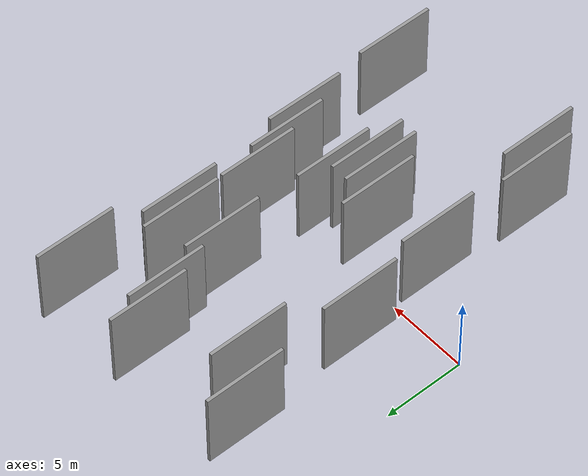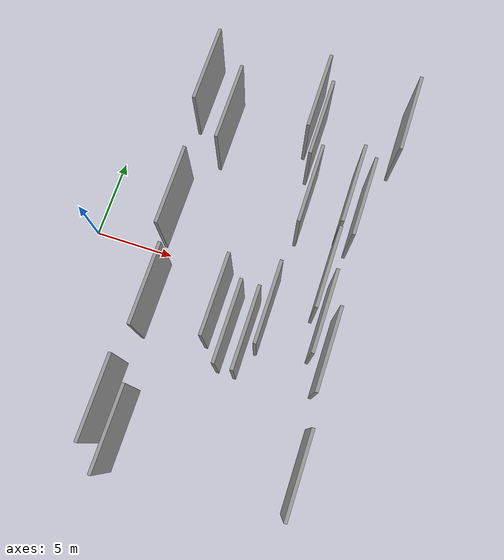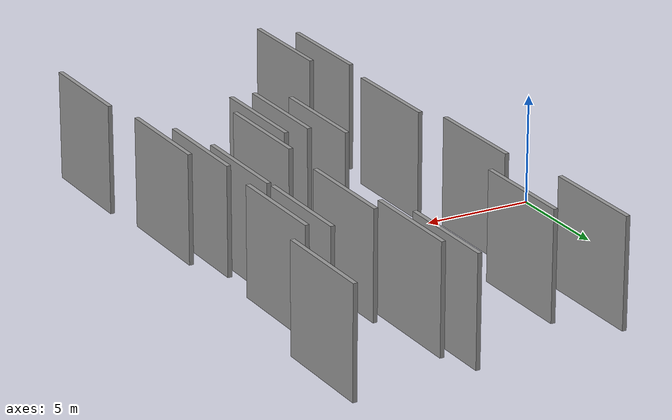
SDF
<sdf version="1.6">
 <world name="default">
  <scene>
   <sky><clouds><speed>12</speed></clouds></sky>
   <ambient>0.4 0.4 0.4 1</ambient>
   <background>0.7 0.7 0.7 1</background>
   <shadows>1</shadows>
  </scene>
  <gravity>0 0 -9.8066</gravity>
  <magnetic_field>6e-06 2.3e-05 -4.2e-05</magnetic_field>
  <physics default="0" name="default_physics" type="ode">
   <ode>
    <solver>
     <type>quick</type>
     <iters>10</iters>
     <sor>1.0</sor>
     <use_dynamic_moi_rescaling>0</use_dynamic_moi_rescaling>
    </solver>
    <constraints>
     <cfm>0</cfm>
     <erp>0.2</erp>
     <contact_max_correcting_vel>100</contact_max_correcting_vel>
     <contact_surface_layer>0.001</contact_surface_layer>
    </constraints>
   </ode>
   <max_step_size>0.004</max_step_size>
   <real_time_factor>1</real_time_factor>
   <real_time_update_rate>250</real_time_update_rate>
  </physics>
  <light name="sun" type="directional">
   <pose>0 0 10 0 0 0</pose>
   <diffuse>0.8 0.8 0.8 1</diffuse>
   <specular>0.2 0.2 0.2 1</specular>
   <attenuation>
    <range>1000</range>
    <constant>0.9</constant>
    <linear>0.01</linear>
    <quadratic>0.001</quadratic>
   </attenuation>
   <direction>-0.5 0.1 -0.9</direction>
  </light>
  <model name="grey_wall_1">
   <static>1</static>
   <pose>14.7380 1.0888 0.0 0.000000 0.000000 1.570796</pose>
   <link name="link">
    <pose>0 0 2.50 0 0 0</pose>
    <collision name="collision"><geometry><box><size>5.00 0.2 5.00</size></box></geometry></collision>
    <visual name="visual">
     <cast_shadows>0</cast_shadows>
     <geometry><box><size>5.00 0.2 5.00</size></box></geometry>
     <material>
      <script>
       <uri>model://grey_wall/materials/scripts</uri>
       <uri>model://grey_wall/materials/textures</uri>
       <name>vrc/grey_wall</name>
      </script>
     </material>
    </visual>
   </link>
  </model>
  <model name="grey_wall_2">
   <static>1</static>
   <pose>16.4564 -10.1881 0.0 0.000000 0.000000 1.570796</pose>
   <link name="link">
    <pose>0 0 2.50 0 0 0</pose>
    <collision name="collision"><geometry><box><size>5.00 0.2 5.00</size></box></geometry></collision>
    <visual name="visual">
     <cast_shadows>0</cast_shadows>
     <geometry><box><size>5.00 0.2 5.00</size></box></geometry>
     <material>
      <script>
       <uri>model://grey_wall/materials/scripts</uri>
       <uri>model://grey_wall/materials/textures</uri>
       <name>vrc/grey_wall</name>
      </script>
     </material>
    </visual>
   </link>
  </model>
  <model name="grey_wall_3">
   <static>1</static>
   <pose>16.0737 -3.3738 0.0 0.000000 0.000000 1.570796</pose>
   <link name="link">
    <pose>0 0 2.50 0 0 0</pose>
    <collision name="collision"><geometry><box><size>5.00 0.2 5.00</size></box></geometry></collision>
    <visual name="visual">
     <cast_shadows>0</cast_shadows>
     <geometry><box><size>5.00 0.2 5.00</size></box></geometry>
     <material>
      <script>
       <uri>model://grey_wall/materials/scripts</uri>
       <uri>model://grey_wall/materials/textures</uri>
       <name>vrc/grey_wall</name>
      </script>
     </material>
    </visual>
   </link>
  </model>
  <model name="grey_wall_4">
   <static>1</static>
   <pose>3.9370 11.1824 0.0 0.000000 0.000000 1.570796</pose>
   <link name="link">
    <pose>0 0 2.50 0 0 0</pose>
    <collision name="collision"><geometry><box><size>5.00 0.2 5.00</size></box></geometry></collision>
    <visual name="visual">
     <cast_shadows>0</cast_shadows>
     <geometry><box><size>5.00 0.2 5.00</size></box></geometry>
     <material>
      <script>
       <uri>model://grey_wall/materials/scripts</uri>
       <uri>model://grey_wall/materials/textures</uri>
       <name>vrc/grey_wall</name>
      </script>
     </material>
    </visual>
   </link>
  </model>
  <model name="grey_wall_5">
   <static>1</static>
   <pose>12.0923 -1.9052 0.0 0.000000 0.000000 1.570796</pose>
   <link name="link">
    <pose>0 0 2.50 0 0 0</pose>
    <collision name="collision"><geometry><box><size>5.00 0.2 5.00</size></box></geometry></collision>
    <visual name="visual">
     <cast_shadows>0</cast_shadows>
     <geometry><box><size>5.00 0.2 5.00</size></box></geometry>
     <material>
      <script>
       <uri>model://grey_wall/materials/scripts</uri>
       <uri>model://grey_wall/materials/textures</uri>
       <name>vrc/grey_wall</name>
      </script>
     </material>
    </visual>
   </link>
  </model>
  <model name="grey_wall_6">
   <static>1</static>
   <pose>11.3502 -3.6699 0.0 0.000000 0.000000 1.570796</pose>
   <link name="link">
    <pose>0 0 2.50 0 0 0</pose>
    <collision name="collision"><geometry><box><size>5.00 0.2 5.00</size></box></geometry></collision>
    <visual name="visual">
     <cast_shadows>0</cast_shadows>
     <geometry><box><size>5.00 0.2 5.00</size></box></geometry>
     <material>
      <script>
       <uri>model://grey_wall/materials/scripts</uri>
       <uri>model://grey_wall/materials/textures</uri>
       <name>vrc/grey_wall</name>
      </script>
     </material>
    </visual>
   </link>
  </model>
  <model name="grey_wall_7">
   <static>1</static>
   <pose>6.0468 -11.0918 0.0 0.000000 0.000000 1.570796</pose>
   <link name="link">
    <pose>0 0 2.50 0 0 0</pose>
    <collision name="collision"><geometry><box><size>5.00 0.2 5.00</size></box></geometry></collision>
    <visual name="visual">
     <cast_shadows>0</cast_shadows>
     <geometry><box><size>5.00 0.2 5.00</size></box></geometry>
     <material>
      <script>
       <uri>model://grey_wall/materials/scripts</uri>
       <uri>model://grey_wall/materials/textures</uri>
       <name>vrc/grey_wall</name>
      </script>
     </material>
    </visual>
   </link>
  </model>
  <model name="grey_wall_8">
   <static>1</static>
   <pose>5.1480 -3.0388 0.0 0.000000 0.000000 1.570796</pose>
   <link name="link">
    <pose>0 0 2.50 0 0 0</pose>
    <collision name="collision"><geometry><box><size>5.00 0.2 5.00</size></box></geometry></collision>
    <visual name="visual">
     <cast_shadows>0</cast_shadows>
     <geometry><box><size>5.00 0.2 5.00</size></box></geometry>
     <material>
      <script>
       <uri>model://grey_wall/materials/scripts</uri>
       <uri>model://grey_wall/materials/textures</uri>
       <name>vrc/grey_wall</name>
      </script>
     </material>
    </visual>
   </link>
  </model>
  <model name="grey_wall_9">
   <static>1</static>
   <pose>15.2754 -1.4124 0.0 0.000000 0.000000 1.570796</pose>
   <link name="link">
    <pose>0 0 2.50 0 0 0</pose>
    <collision name="collision"><geometry><box><size>5.00 0.2 5.00</size></box></geometry></collision>
    <visual name="visual">
     <cast_shadows>0</cast_shadows>
     <geometry><box><size>5.00 0.2 5.00</size></box></geometry>
     <material>
      <script>
       <uri>model://grey_wall/materials/scripts</uri>
       <uri>model://grey_wall/materials/textures</uri>
       <name>vrc/grey_wall</name>
      </script>
     </material>
    </visual>
   </link>
  </model>
  <model name="grey_wall_10">
   <static>1</static>
   <pose>14.7207 6.3916 0.0 0.000000 0.000000 1.570796</pose>
   <link name="link">
    <pose>0 0 2.50 0 0 0</pose>
    <collision name="collision"><geometry><box><size>5.00 0.2 5.00</size></box></geometry></collision>
    <visual name="visual">
     <cast_shadows>0</cast_shadows>
     <geometry><box><size>5.00 0.2 5.00</size></box></geometry>
     <material>
      <script>
       <uri>model://grey_wall/materials/scripts</uri>
       <uri>model://grey_wall/materials/textures</uri>
       <name>vrc/grey_wall</name>
      </script>
     </material>
    </visual>
   </link>
  </model>
  <model name="grey_wall_11">
   <static>1</static>
   <pose>4.7582 -9.7761 0.0 0.000000 0.000000 1.570796</pose>
   <link name="link">
    <pose>0 0 2.50 0 0 0</pose>
    <collision name="collision"><geometry><box><size>5.00 0.2 5.00</size></box></geometry></collision>
    <visual name="visual">
     <cast_shadows>0</cast_shadows>
     <geometry><box><size>5.00 0.2 5.00</size></box></geometry>
     <material>
      <script>
       <uri>model://grey_wall/materials/scripts</uri>
       <uri>model://grey_wall/materials/textures</uri>
       <name>vrc/grey_wall</name>
      </script>
     </material>
    </visual>
   </link>
  </model>
  <model name="grey_wall_12">
   <static>1</static>
   <pose>4.5091 2.9715 0.0 0.000000 0.000000 1.570796</pose>
   <link name="link">
    <pose>0 0 2.50 0 0 0</pose>
    <collision name="collision"><geometry><box><size>5.00 0.2 5.00</size></box></geometry></collision>
    <visual name="visual">
     <cast_shadows>0</cast_shadows>
     <geometry><box><size>5.00 0.2 5.00</size></box></geometry>
     <material>
      <script>
       <uri>model://grey_wall/materials/scripts</uri>
       <uri>model://grey_wall/materials/textures</uri>
       <name>vrc/grey_wall</name>
      </script>
     </material>
    </visual>
   </link>
  </model>
  <model name="grey_wall_13">
   <static>1</static>
   <pose>11.7024 9.8791 0.0 0.000000 0.000000 1.570796</pose>
   <link name="link">
    <pose>0 0 2.50 0 0 0</pose>
    <collision name="collision"><geometry><box><size>5.00 0.2 5.00</size></box></geometry></collision>
    <visual name="visual">
     <cast_shadows>0</cast_shadows>
     <geometry><box><size>5.00 0.2 5.00</size></box></geometry>
     <material>
      <script>
       <uri>model://grey_wall/materials/scripts</uri>
       <uri>model://grey_wall/materials/textures</uri>
       <name>vrc/grey_wall</name>
      </script>
     </material>
    </visual>
   </link>
  </model>
  <model name="grey_wall_14">
   <static>1</static>
   <pose>11.0744 11.5704 0.0 0.000000 0.000000 1.570796</pose>
   <link name="link">
    <pose>0 0 2.50 0 0 0</pose>
    <collision name="collision"><geometry><box><size>5.00 0.2 5.00</size></box></geometry></collision>
    <visual name="visual">
     <cast_shadows>0</cast_shadows>
     <geometry><box><size>5.00 0.2 5.00</size></box></geometry>
     <material>
      <script>
       <uri>model://grey_wall/materials/scripts</uri>
       <uri>model://grey_wall/materials/textures</uri>
       <name>vrc/grey_wall</name>
      </script>
     </material>
    </visual>
   </link>
  </model>
  <model name="grey_wall_15">
   <static>1</static>
   <pose>10.2600 -3.6312 0.0 0.000000 0.000000 1.570796</pose>
   <link name="link">
    <pose>0 0 2.50 0 0 0</pose>
    <collision name="collision"><geometry><box><size>5.00 0.2 5.00</size></box></geometry></collision>
    <visual name="visual">
     <cast_shadows>0</cast_shadows>
     <geometry><box><size>5.00 0.2 5.00</size></box></geometry>
     <material>
      <script>
       <uri>model://grey_wall/materials/scripts</uri>
       <uri>model://grey_wall/materials/textures</uri>
       <name>vrc/grey_wall</name>
      </script>
     </material>
    </visual>
   </link>
  </model>
  <model name="grey_wall_16">
   <static>1</static>
   <pose>16.7602 11.8082 0.0 0.000000 0.000000 1.570796</pose>
   <link name="link">
    <pose>0 0 2.50 0 0 0</pose>
    <collision name="collision"><geometry><box><size>5.00 0.2 5.00</size></box></geometry></collision>
    <visual name="visual">
     <cast_shadows>0</cast_shadows>
     <geometry><box><size>5.00 0.2 5.00</size></box></geometry>
     <material>
      <script>
       <uri>model://grey_wall/materials/scripts</uri>
       <uri>model://grey_wall/materials/textures</uri>
       <name>vrc/grey_wall</name>
      </script>
     </material>
    </visual>
   </link>
  </model>
  <model name="grey_wall_17">
   <static>1</static>
   <pose>15.5462 5.7979 0.0 0.000000 0.000000 1.570796</pose>
   <link name="link">
    <pose>0 0 2.50 0 0 0</pose>
    <collision name="collision"><geometry><box><size>5.00 0.2 5.00</size></box></geometry></collision>
    <visual name="visual">
     <cast_shadows>0</cast_shadows>
     <geometry><box><size>5.00 0.2 5.00</size></box></geometry>
     <material>
      <script>
       <uri>model://grey_wall/materials/scripts</uri>
       <uri>model://grey_wall/materials/textures</uri>
       <name>vrc/grey_wall</name>
      </script>
     </material>
    </visual>
   </link>
  </model>
  <model name="grey_wall_18">
   <static>1</static>
   <pose>12.3063 5.6007 0.0 0.000000 0.000000 1.570796</pose>
   <link name="link">
    <pose>0 0 2.50 0 0 0</pose>
    <collision name="collision"><geometry><box><size>5.00 0.2 5.00</size></box></geometry></collision>
    <visual name="visual">
     <cast_shadows>0</cast_shadows>
     <geometry><box><size>5.00 0.2 5.00</size></box></geometry>
     <material>
      <script>
       <uri>model://grey_wall/materials/scripts</uri>
       <uri>model://grey_wall/materials/textures</uri>
       <name>vrc/grey_wall</name>
      </script>
     </material>
    </visual>
   </link>
  </model>
  <model name="grey_wall_19">
   <static>1</static>
   <pose>9.1028 -2.4088 0.0 0.000000 0.000000 1.570796</pose>
   <link name="link">
    <pose>0 0 2.50 0 0 0</pose>
    <collision name="collision"><geometry><box><size>5.00 0.2 5.00</size></box></geometry></collision>
    <visual name="visual">
     <cast_shadows>0</cast_shadows>
     <geometry><box><size>5.00 0.2 5.00</size></box></geometry>
     <material>
      <script>
       <uri>model://grey_wall/materials/scripts</uri>
       <uri>model://grey_wall/materials/textures</uri>
       <name>vrc/grey_wall</name>
      </script>
     </material>
    </visual>
   </link>
  </model>
  <model name="grey_wall_20">
   <static>1</static>
   <pose>6.0505 9.1591 0.0 0.000000 0.000000 1.570796</pose>
   <link name="link">
    <pose>0 0 2.50 0 0 0</pose>
    <collision name="collision"><geometry><box><size>5.00 0.2 5.00</size></box></geometry></collision>
    <visual name="visual">
     <cast_shadows>0</cast_shadows>
     <geometry><box><size>5.00 0.2 5.00</size></box></geometry>
     <material>
      <script>
       <uri>model://grey_wall/materials/scripts</uri>
       <uri>model://grey_wall/materials/textures</uri>
       <name>vrc/grey_wall</name>
      </script>
     </material>
    </visual>
   </link>
  </model>
 </world>
</sdf>
